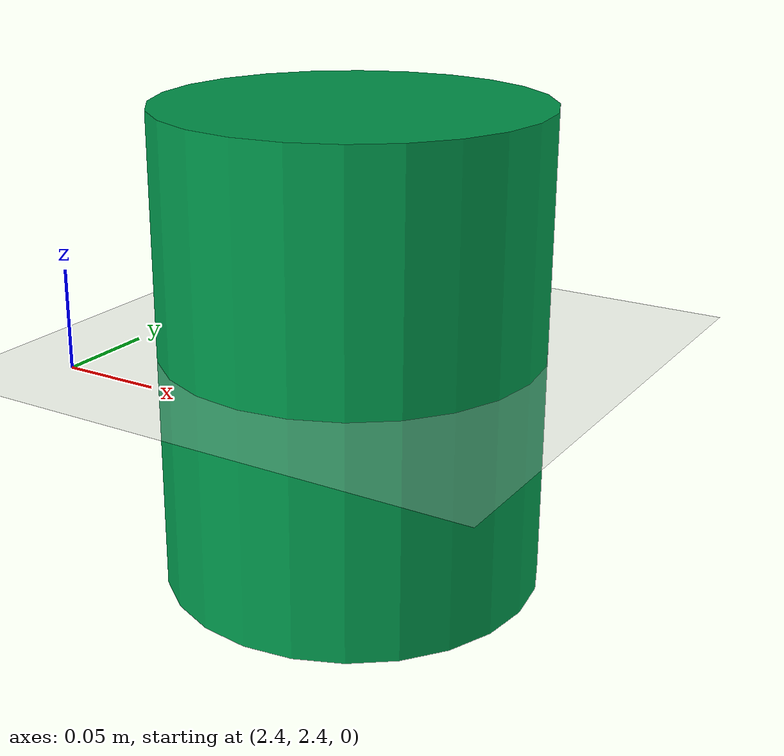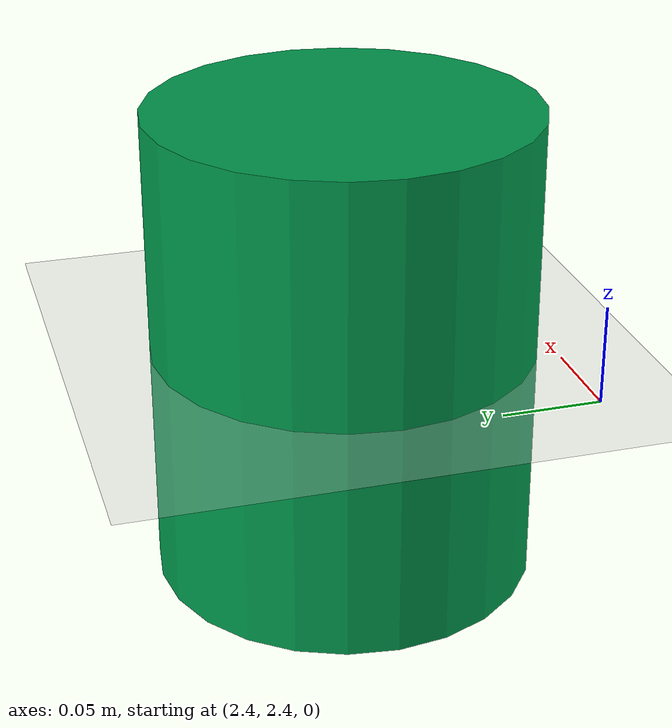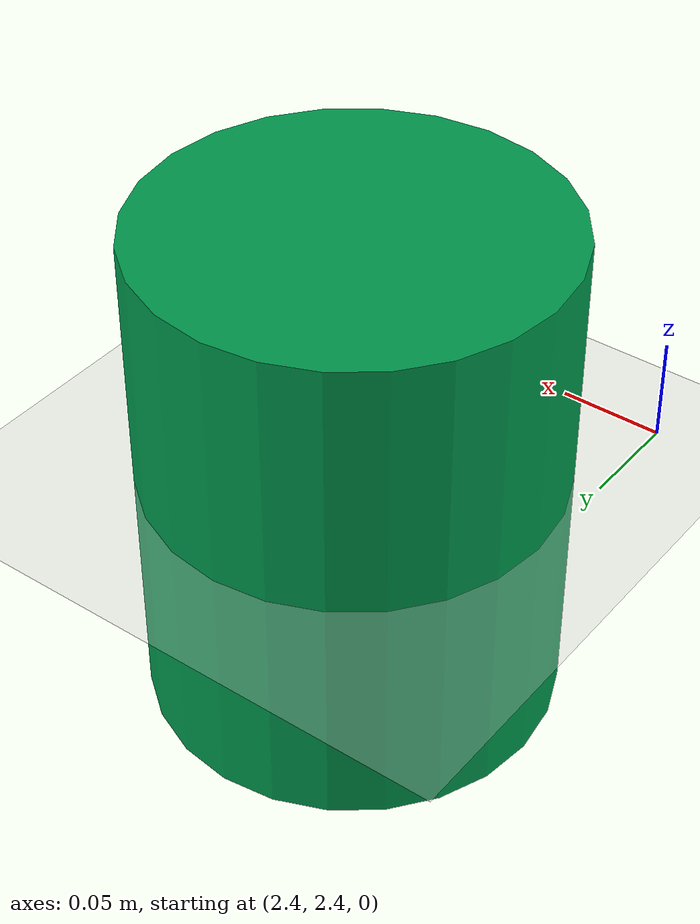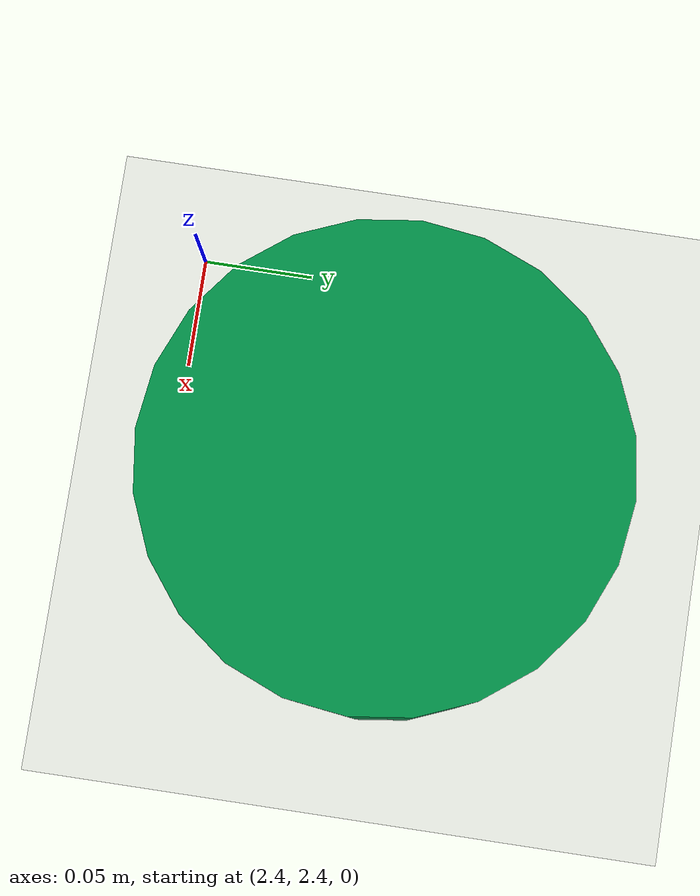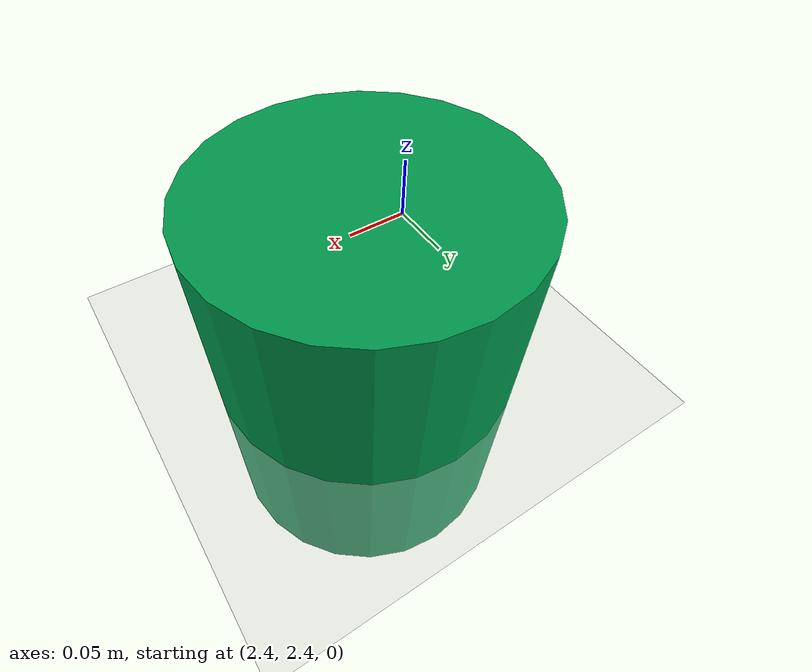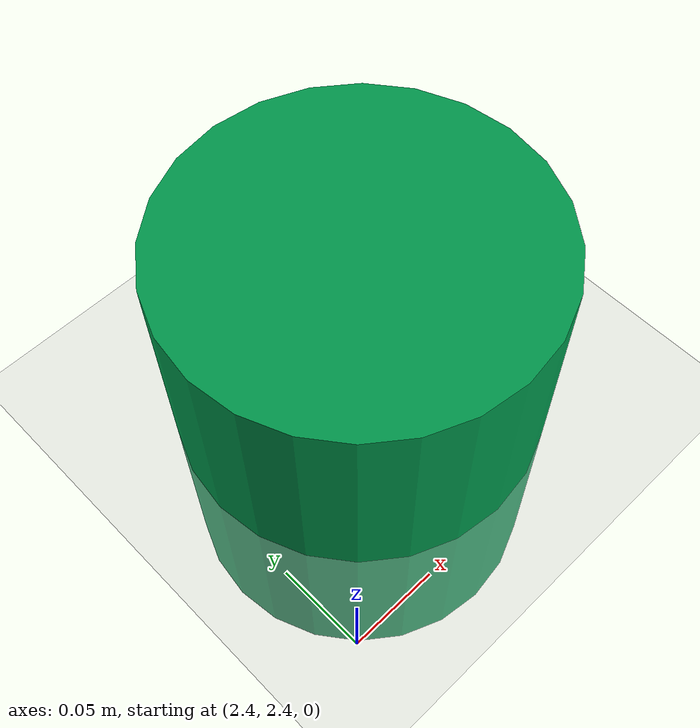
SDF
<sdf version="1.4">
  <world name="default">

    <scene>
      <ambient>0.4 0.4 0.4 1</ambient>
      <background>0.7 0.7 0.7 1</background>
      <shadows>true</shadows>
    </scene>

    <!-- A global light source -->
    <include>
      <uri>model://sun</uri>
    </include>

    <!-- A ground plane -->
    <include>
      <uri>model://ground_plane</uri>
    </include>

    <physics type="ode">
      <real_time_update_rate>1000.0</real_time_update_rate>
      <max_step_size>0.001</max_step_size>
      <real_time_factor>1</real_time_factor>
      <ode>
        <solver>
          <type>quick</type>
          <iters>150</iters>
          <precon_iters>0</precon_iters>
          <sor>1.400000</sor>
          <use_dynamic_moi_rescaling>1</use_dynamic_moi_rescaling>
        </solver>
        <constraints>
          <cfm>0.00001</cfm>
          <erp>0.2</erp>
          <contact_max_correcting_vel>2000.000000</contact_max_correcting_vel>
          <contact_surface_layer>0.01000</contact_surface_layer>
        </constraints>
      </ode>
    </physics>

    <model name="obstacle_1">
      <pose>2.5 2.5 0 0 0 0</pose>
      <link name="link">
        <collision name="collision">
          <geometry>
            <cylinder>
              <radius>0.1</radius>
              <length>0.25</length>
            </cylinder>
          </geometry>
        </collision>

        <visual name="visual">
          <geometry>
            <cylinder>
              <radius>0.1</radius>
              <length>0.25</length>
            </cylinder>
          </geometry>
          <material>
              <ambient>0 0.6 0.3 1</ambient> <!-- 环境光颜色，绿色 -->
              <diffuse>0 0.6 0.3 1</diffuse> <!-- 漫反射颜色，绿色 -->
              <specular>0.1 0.1 0.1 1</specular> <!-- 镜面反射颜色，微光 -->
          </material>
        </visual>
      </link>
    </model>

    <gui fullscreen='0'>
      <camera name='user_camera'>
        <pose>2 2 8.0 0 1.5708 1.5708</pose>
        <view_controller>orbit</view_controller>
      </camera>
    </gui>
  </world>
</sdf>
